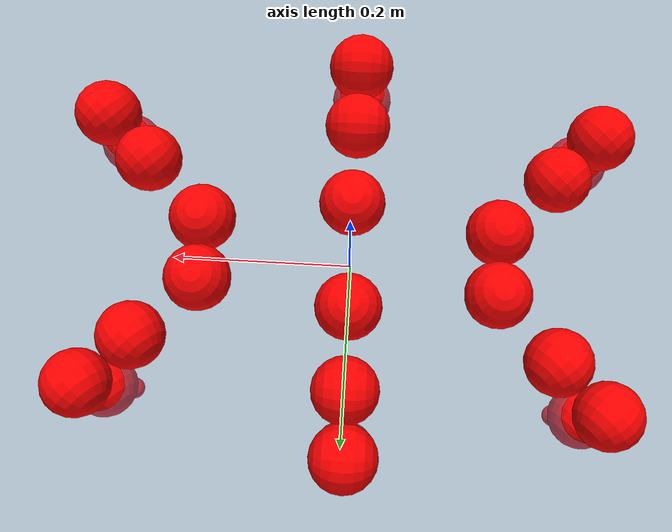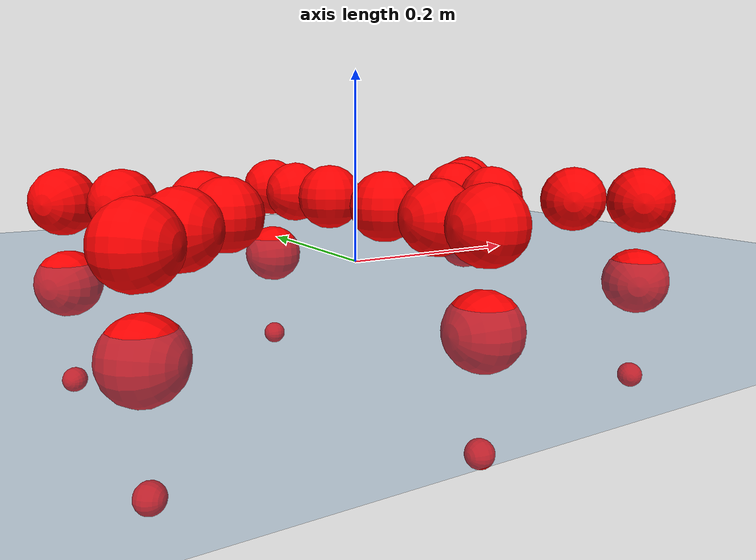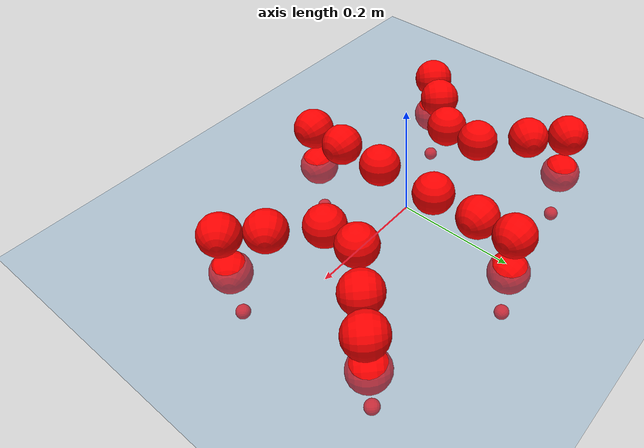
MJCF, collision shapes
<mujoco model="Golem">
  <compiler angle="radian" assetdir="assets" balanceinertia="true" inertiafromgeom="false"/>

  <option timestep="0.005" density="1.2" viscosity="2e-05"/>

  <size nkey="1"/>

  <visual>
    <quality shadowsize="8192"/>
    <map shadowclip="0.5"/>
  </visual>

  <default>
    <default class="/">
      <joint armature="0.01" damping="0.01" frictionloss="0.01"/>
      <geom contype="0" conaffinity="0" group="1" solref="-1000 -80"/>
      <site size="0.01 0.005 0.005" group="5"/>
      <general forcelimited="true" biastype="affine" gainprm="25" biasprm="0 -25 -0.5"/>
      <default class="visual">
        <geom type="mesh" group="2"/>
      </default>
      <default class="collision">
        <geom group="3"/>
      </default>
      <default class="foot">
        <geom size="0.01 0 0" condim="6" group="4" priority="1" solimp="0.015 1 0.01"/>
      </default>
      <default class="reward_collision_sphere">
        <geom group="5" rgba="1 0 0 1"/>
      </default>
    </default>
  </default>

  <asset>
    <texture type="skybox" colorspace="auto" name="//unnamed_texture_0" builtin="gradient" rgb1="0.95 0.95 0.95" rgb2="0.95 0.95 0.95" width="100" height="600"/>
    <texture type="2d" colorspace="auto" name="texplane" builtin="checker" rgb1="0.345 0.575 0.748" rgb2="0.345 0.575 0.748" markrgb="1 1 1" width="512" height="512"/>
    <material name="MatPlane" class="/" texture="texplane" texuniform="true" texrepeat="2 2" specular="0.9"/>
    <mesh name="body" class="/" file="body.stl" scale="0.001 0.001 0.001"/>
    <mesh name="coxa" class="/" file="coxa.stl" scale="0.001 0.001 0.001"/>
    <mesh name="femur" class="/" file="femur.stl" scale="0.001 0.001 0.001"/>
    <mesh name="tibia" class="/" file="tibia.stl" scale="0.001 0.001 0.001"/>
    <mesh name="tarsus" class="/" file="tarsus.stl" scale="0.001 0.001 0.001"/>
  </asset>

  <worldbody>
    <geom name="floor" class="/" size="100 100 0.125" type="plane" group="0" material="MatPlane"/>
    <light name="toplight_shadow" class="/" pos="0 0 5" dir="0.0990148 0.0990148 -0.990148" type="directional" ambient="0.04 0.04 0.04" diffuse="0.55 0.55 0.55" specular="0.12 0.12 0.12"/>
    <light name="toplight_fill" class="/" pos="0 0 5" dir="0.0990148 0.0990148 -0.990148" type="directional" castshadow="false" ambient="0.04 0.04 0.04" diffuse="0.3 0.3 0.3" specular="0.08 0.08 0.08"/>
    <body name="trunk" pos="0.000487169 8.27524e-05 -0.000588956" quat="1 -0.000291595 -6.86973e-05 -0.000337018">
      <inertial pos="0.000310844 -0.000729251 -0.00381569" quat="0.999992 0.00278932 -0.00126674 0.00241929" mass="2.53825" diaginertia="0.00979541 0.00110322 0.0102621"/>
      <joint name="//unnamed_joint_0" type="free"/>
      <geom name="//unnamed_geom_1" class="/" pos="0 0 0.0642949" quat="1 0 0 0" type="mesh" rgba="0.9 0.9 0.9 1" mesh="body"/>
      <site name="imu" class="/" pos="0.133732 0.00015076 0.100662" size="0.00880591"/>
      <camera name="track" class="/" pos="0 -1.28334 0" quat="0.707107 0.707107 0 0" mode="trackcom"/>
      <camera name="ego_camera" class="/" pos="0.129415 0 0.100461" quat="-0.5 -0.5 0.5 0.5"/>
      <body name="coxa_RR" pos="-0.177212 -0.053452 0.0640529" quat="0.382896 0.000593815 0.000221846 -0.923791">
        <inertial pos="-0.00101766 0.000799671 0.000717892" quat="1 -3.23356e-05 0.000383006 -0.000376147" mass="0.135702" diaginertia="0.00977897 0.00109507 0.0101299"/>
        <joint name="coxa_joint_RR" class="/" pos="0 0 0" axis="-0.000958768 5.99033e-05 -1" range="-3.12073 3.14806" armature="0.00890523" damping="0.00866822" frictionloss="0.00886089"/>
        <geom name="//unnamed_geom_2" class="/" type="mesh" rgba="0.2 0.2 0.2 1" mesh="coxa"/>
        <geom name="//unnamed_geom_3" class="reward_collision_sphere" size="0.0352236" pos="-0.0298649 0 0"/>
        <body name="femur_RR" pos="0.0579512 0.000326126 -0.00140817" quat="0.49995 -0.499768 0.49984 0.500441">
          <inertial pos="-5.39113e-05 0.000604397 0.000484754" quat="1 0.000242534 -0.000153285 3.24613e-05" mass="0.136046" diaginertia="0.00976022 0.0010843 0.0100929"/>
          <joint name="femur_joint_RR" class="/" pos="0 0 0" axis="0.000622452 -0.000176754 -1" range="-3.14269 3.13457" armature="0.00920771" damping="0.00297369" frictionloss="0.0089344"/>
          <geom name="//unnamed_geom_4" class="/" type="mesh" rgba="0.9 0.9 0.9 1" mesh="femur"/>
          <geom name="//unnamed_geom_5" class="reward_collision_sphere" size="0.0352236"/>
          <body name="tibia_RR" pos="0.00102503 -0.068729 0.00178891" quat="5.59423e-05 1 -4.77919e-06 2.50762e-05">
            <inertial pos="0.000948173 0.000457597 -0.000575698" quat="1 -0.000493445 0.000797587 -0.000188827" mass="0.138071" diaginertia="0.00989054 0.001097 0.0104092"/>
            <joint name="tibia_joint_RR" class="/" pos="0 0 0" axis="0.00120288 0.000602811 0.999999" range="-3.13977 3.14998" armature="0.00890835" damping="0" frictionloss="0.00900157"/>
            <geom name="//unnamed_geom_6" class="/" type="mesh" rgba="0.2 0.2 0.2 1" mesh="tibia"/>
            <geom name="//unnamed_geom_7" class="reward_collision_sphere" size="0.0352236"/>
            <body name="tarsus_RR" pos="0.0849579 -0.000877181 -0.000520232" quat="1 0.000236922 5.21819e-05 -3.96192e-05">
              <inertial pos="0.0587784 -0.000437057 -0.000705158" quat="0.501339 0.498764 0.49944 0.500453" mass="0.134087" diaginertia="0.00978051 0.00107343 0.0100826"/>
              <joint name="tarsus_joint_RR" class="/" pos="0 0 0" axis="0.00296559 -0.00102862 0.999995" range="-3.13868 3.13434" armature="0.00888906" damping="0.00225906" frictionloss="0.00858225"/>
              <geom name="//unnamed_geom_8" class="/" type="mesh" rgba="0.9 0.9 0.9 1" mesh="tarsus"/>
              <geom name="foot_1" class="foot" size="0.00853207" pos="0.111496 0 0" quat="0 -0.707107 0 0.707107"/>
              <geom name="//unnamed_geom_10" class="reward_collision_sphere" size="0.0352236"/>
              <geom name="//unnamed_geom_11" class="reward_collision_sphere" size="0.0132089" pos="0.107016 0 0"/>
              <site name="foot_1" class="foot" pos="0.111496 0 0" quat="0 -0.707107 0 0.707107" size="0.00880591"/>
            </body>
          </body>
        </body>
      </body>
      <body name="coxa_RM" pos="8.72452e-05 -0.0864679 0.0651633" quat="0.707156 -3.00452e-05 0.000387774 -0.707058">
        <inertial pos="7.69617e-05 0.000903639 -0.000894439" quat="1 0.000190988 0.000449474 -0.00072913" mass="0.137023" diaginertia="0.00988246 0.00109103 0.0102044"/>
        <joint name="coxa_joint_RM" class="/" pos="0 0 0" axis="-0.000692864 -0.000233698 -1" range="-3.13702 3.12836" armature="0.00907282" damping="0.0109727" frictionloss="0.00844413"/>
        <geom name="//unnamed_geom_12" class="/" type="mesh" rgba="0.2 0.2 0.2 1" mesh="coxa"/>
        <geom name="//unnamed_geom_13" class="reward_collision_sphere" size="0.0352236" pos="-0.0298649 0 0"/>
        <body name="femur_RM" pos="0.0575884 -0.00126902 -0.00138032" quat="0.499987 -0.499858 0.50052 0.499635">
          <inertial pos="-0.000297461 0.00057751 -0.00025324" quat="0.999993 -0.000788434 -9.12798e-05 -0.00368902" mass="0.13617" diaginertia="0.00980018 0.00109839 0.0102566"/>
          <joint name="femur_joint_RM" class="/" pos="0 0 0" axis="-0.00148499 -0.0019754 -0.999997" range="-3.13886 3.13882" armature="0.00923681" damping="0.011136" frictionloss="0.00893825"/>
          <geom name="//unnamed_geom_14" class="/" type="mesh" rgba="0.9 0.9 0.9 1" mesh="femur"/>
          <geom name="//unnamed_geom_15" class="reward_collision_sphere" size="0.0352236"/>
          <body name="tibia_RM" pos="-0.000951982 -0.0686907 -0.000589059" quat="2.43902e-05 1 9.85241e-05 -2.30011e-05">
            <inertial pos="0.000539042 -0.000330957 -0.000292943" quat="1 8.14039e-05 0.000563942 0.00041987" mass="0.135884" diaginertia="0.00970246 0.00108751 0.0102859"/>
            <joint name="tibia_joint_RM" class="/" pos="0 0 0" axis="0.000182862 -0.00053656 1" range="-3.13678 3.13875" armature="0.00885625" damping="0.00430394" frictionloss="0.00900825"/>
            <geom name="//unnamed_geom_16" class="/" type="mesh" rgba="0.2 0.2 0.2 1" mesh="tibia"/>
            <geom name="//unnamed_geom_17" class="reward_collision_sphere" size="0.0352236"/>
            <body name="tarsus_RM" pos="0.0878116 -0.000143544 0.00162938" quat="1 0.00034651 -6.30169e-05 -0.000167504">
              <inertial pos="0.0605681 0.000339986 0.00109737" quat="0.501426 0.50004 0.500395 0.498134" mass="0.13673" diaginertia="0.00973831 0.00108839 0.0101995"/>
              <joint name="tarsus_joint_RM" class="/" pos="0 0 0" axis="-0.00152912 0.00114675 0.999998" range="-3.1387 3.16618" armature="0.00880163" damping="0" frictionloss="0.00860482"/>
              <geom name="//unnamed_geom_18" class="/" type="mesh" rgba="0.9 0.9 0.9 1" mesh="tarsus"/>
              <geom name="foot_2" class="foot" size="0.00873874" pos="0.111496 0 0" quat="0 -0.707107 0 0.707107"/>
              <geom name="//unnamed_geom_20" class="reward_collision_sphere" size="0.0352236"/>
              <geom name="//unnamed_geom_21" class="reward_collision_sphere" size="0.0132089" pos="0.107016 0 0"/>
              <site name="foot_2" class="foot" pos="0.111496 0 0" quat="0 -0.707107 0 0.707107" size="0.00880591"/>
            </body>
          </body>
        </body>
      </body>
      <body name="coxa_RF" pos="0.178473 -0.0536016 0.0638802" quat="0.923767 3.23725e-05 -0.000194105 -0.382956">
        <inertial pos="0.000656302 -0.00028097 -0.000275891" quat="0.999999 6.8924e-05 -0.00057635 0.00122839" mass="0.135887" diaginertia="0.0098061 0.00108763 0.010224"/>
        <joint name="coxa_joint_RF" class="/" pos="0 0 0" axis="0.00238206 -0.0015585 -0.999996" range="-3.13634 3.12778" armature="0.00871463" damping="0" frictionloss="0.00911334"/>
        <geom name="//unnamed_geom_22" class="/" type="mesh" rgba="0.2 0.2 0.2 1" mesh="coxa"/>
        <geom name="//unnamed_geom_23" class="reward_collision_sphere" size="0.0352236" pos="-0.0298649 0 0"/>
        <body name="femur_RF" pos="0.0590782 0.00149907 0.000405233" quat="0.500505 -0.49971 0.499558 0.500226">
          <inertial pos="0.000702863 -0.000498193 0.000981807" quat="0.99999 -0.00281907 0.00305116 0.00184139" mass="0.138195" diaginertia="0.0098828 0.00110573 0.0103573"/>
          <joint name="femur_joint_RF" class="/" pos="0 0 0" axis="-0.000334733 -0.000628674 -1" range="-3.15787 3.11994" armature="0.00859546" damping="0.00766898" frictionloss="0.00894477"/>
          <geom name="//unnamed_geom_24" class="/" type="mesh" rgba="0.9 0.9 0.9 1" mesh="femur"/>
          <geom name="//unnamed_geom_25" class="reward_collision_sphere" size="0.0352236"/>
          <body name="tibia_RF" pos="-0.000209116 -0.0694257 0.000459006" quat="-8.14759e-05 1 7.44844e-05 -6.6666e-05">
            <inertial pos="2.85937e-05 0.000387276 0.000127004" quat="0.999992 -0.000461901 -0.00224171 -0.00316103" mass="0.133042" diaginertia="0.00961599 0.00107513 0.0101404"/>
            <joint name="tibia_joint_RF" class="/" pos="0 0 0" axis="0.000482418 8.89705e-05 1" range="-3.14034 3.13859" armature="0.00872618" damping="0" frictionloss="0.00881411"/>
            <geom name="//unnamed_geom_26" class="/" type="mesh" rgba="0.2 0.2 0.2 1" mesh="tibia"/>
            <geom name="//unnamed_geom_27" class="reward_collision_sphere" size="0.0352236"/>
            <body name="tarsus_RF" pos="0.0879745 -0.000712516 -0.000287463" quat="1 -0.000141429 0.00027414 -0.000198221">
              <inertial pos="0.0598858 -0.000106711 0.000176264" quat="0.500214 0.500109 0.500053 0.499623" mass="0.135513" diaginertia="0.0096625 0.00109084 0.0101708"/>
              <joint name="tarsus_joint_RF" class="/" pos="0 0 0" axis="-0.000603682 -0.00347848 0.999994" range="-3.13413 3.1315" armature="0.00899072" damping="0" frictionloss="0.00859365"/>
              <geom name="//unnamed_geom_28" class="/" type="mesh" rgba="0.9 0.9 0.9 1" mesh="tarsus"/>
              <geom name="foot_3" class="foot" size="0.00900048" pos="0.111496 0 0" quat="0 -0.707107 0 0.707107"/>
              <geom name="//unnamed_geom_30" class="reward_collision_sphere" size="0.0352236"/>
              <geom name="//unnamed_geom_31" class="reward_collision_sphere" size="0.0132089" pos="0.107016 0 0"/>
              <site name="foot_3" class="foot" pos="0.111496 0 0" quat="0 -0.707107 0 0.707107" size="0.00880591"/>
            </body>
          </body>
        </body>
      </body>
      <body name="coxa_LR" pos="-0.176578 0.0552333 0.0656319" quat="0.382912 5.95573e-05 -5.9084e-05 0.923785">
        <inertial pos="0.000299465 0.000352637 0.000877369" quat="0.999996 -0.000708336 0.00275887 0.000875103" mass="0.136042" diaginertia="0.00964451 0.00107066 0.0100431"/>
        <joint name="coxa_joint_LR" class="/" pos="0 0 0" axis="-0.0018488 0.00447968 -0.999988" range="-3.14275 3.12868" armature="0.00858264" damping="0.00850149" frictionloss="0.00865"/>
        <geom name="//unnamed_geom_32" class="/" type="mesh" rgba="0.2 0.2 0.2 1" mesh="coxa"/>
        <geom name="//unnamed_geom_33" class="reward_collision_sphere" size="0.0352236" pos="-0.0298649 0 0"/>
        <body name="femur_LR" pos="0.0601944 -0.00257356 0.000385541" quat="0.500028 -0.499853 0.499922 0.500197">
          <inertial pos="-0.000134442 0.000618943 -0.00114172" quat="0.999989 0.000439604 -0.00419655 0.00196466" mass="0.134292" diaginertia="0.00972925 0.00108222 0.0101939"/>
          <joint name="femur_joint_LR" class="/" pos="0 0 0" axis="-0.00246742 -0.00425801 0.999988" range="-3.13662 3.13773" armature="0.00843648" damping="0.00375021" frictionloss="0.0086032"/>
          <geom name="//unnamed_geom_34" class="/" type="mesh" rgba="0.9 0.9 0.9 1" mesh="femur"/>
          <geom name="//unnamed_geom_35" class="reward_collision_sphere" size="0.0352236"/>
          <body name="tibia_LR" pos="0.00070247 -0.070666 -0.000759888" quat="8.03316e-06 1 -1.67056e-05 -2.27951e-05">
            <inertial pos="-0.000591308 0.000428661 0.000312044" quat="0.999999 -0.000585013 -0.000979898 0.00077608" mass="0.135208" diaginertia="0.00960577 0.00107434 0.0101227"/>
            <joint name="tibia_joint_LR" class="/" pos="0 0 0" axis="0.0037499 0.00367417 -0.999986" range="-3.14256 3.11112" armature="0.00937633" damping="0" frictionloss="0.00850033"/>
            <geom name="//unnamed_geom_36" class="/" type="mesh" rgba="0.2 0.2 0.2 1" mesh="tibia"/>
            <geom name="//unnamed_geom_37" class="reward_collision_sphere" size="0.0352236"/>
            <body name="tarsus_LR" pos="0.0873285 0.000702647 0.00186492" quat="1 3.34689e-06 -1.01337e-05 -5.06049e-06">
              <inertial pos="0.0611197 -0.000176009 -0.00133546" quat="0.499981 0.49997 0.499993 0.500056" mass="0.137039" diaginertia="0.00972942 0.00108577 0.0103349"/>
              <joint name="tarsus_joint_LR" class="/" pos="0 0 0" axis="0.000935456 -0.000389805 -0.999999" stiffness="0.000217165" range="-3.1562 3.1574" armature="0.00902955" damping="0" frictionloss="0.0087659"/>
              <geom name="//unnamed_geom_38" class="/" type="mesh" rgba="0.9 0.9 0.9 1" mesh="tarsus"/>
              <geom name="foot_4" class="foot" size="0.00872784" pos="0.111496 0 0" quat="0.707107 0 -0.707107 0"/>
              <geom name="//unnamed_geom_40" class="reward_collision_sphere" size="0.0352236"/>
              <geom name="//unnamed_geom_41" class="reward_collision_sphere" size="0.0132089" pos="0.107016 0 0"/>
              <site name="foot_4" class="foot" pos="0.111496 0 0" quat="0.707107 0 -0.707107 0" size="0.00880591"/>
            </body>
          </body>
        </body>
      </body>
      <body name="coxa_LM" pos="-0.00178874 0.0841181 0.0655889" quat="0.707161 -0.000100022 -0.000228309 0.707052">
        <inertial pos="0.000142391 -0.000475734 0.00174085" quat="0.99999 0.0019182 0.00149921 -0.00383409" mass="0.13455" diaginertia="0.00980267 0.00108357 0.010155"/>
        <joint name="coxa_joint_LM" class="/" pos="0 0 0" axis="0.000384069 -0.000466041 -1" range="-3.13493 3.14803" armature="0.00836558" damping="0.0086197" frictionloss="0.00881474"/>
        <geom name="//unnamed_geom_42" class="/" type="mesh" rgba="0.2 0.2 0.2 1" mesh="coxa"/>
        <geom name="//unnamed_geom_43" class="reward_collision_sphere" size="0.0352236" pos="-0.0298649 0 0"/>
        <body name="femur_LM" pos="0.0550843 0.00132558 -0.000890796" quat="0.499846 -0.500173 0.500122 0.499859">
          <inertial pos="-0.00110155 -0.00104698 0.000775193" quat="1 -0.000951036 0.000106244 -6.3528e-05" mass="0.134136" diaginertia="0.00973302 0.00106685 0.0101719"/>
          <joint name="femur_joint_LM" class="/" pos="0 0 0" axis="0.0039206 0.0025993 0.999989" range="-3.1376 3.14062" armature="0.00860318" damping="0.00516475" frictionloss="0.0086831"/>
          <geom name="//unnamed_geom_44" class="/" type="mesh" rgba="0.9 0.9 0.9 1" mesh="femur"/>
          <geom name="//unnamed_geom_45" class="reward_collision_sphere" size="0.0352236"/>
          <body name="tibia_LM" pos="-0.00113386 -0.066094 0.0017891" quat="9.72187e-06 1 -5.24343e-05 3.91078e-05">
            <inertial pos="0.000202352 -0.00136677 -0.000489005" quat="0.999999 -0.00108906 0.000390357 -0.0007204" mass="0.134227" diaginertia="0.0097548 0.00108394 0.0101681"/>
            <joint name="tibia_joint_LM" class="/" pos="0 0 0" axis="-0.0011844 0.00159127 -0.999998" range="-3.13205 3.14478" armature="0.00893461" damping="0.00662349" frictionloss="0.00843675"/>
            <geom name="//unnamed_geom_46" class="/" type="mesh" rgba="0.2 0.2 0.2 1" mesh="tibia"/>
            <geom name="//unnamed_geom_47" class="reward_collision_sphere" size="0.0352236"/>
            <body name="tarsus_LM" pos="0.0867881 -2.97696e-05 0.000104138" quat="1 2.99303e-05 5.12909e-05 4.76895e-05">
              <inertial pos="0.0606386 -0.000830872 0.000223749" quat="0.500038 0.500082 0.499969 0.499912" mass="0.136155" diaginertia="0.00982494 0.00109286 0.0101837"/>
              <joint name="tarsus_joint_LM" class="/" pos="0 0 0" axis="0.0035627 -0.00375652 -0.999987" range="-3.1348 3.14423" armature="0.00876379" damping="0.0014384" frictionloss="0.00880629"/>
              <geom name="//unnamed_geom_48" class="/" type="mesh" rgba="0.9 0.9 0.9 1" mesh="tarsus"/>
              <geom name="foot_5" class="foot" size="0.00881615" pos="0.111496 0 0" quat="0.707107 0 -0.707107 0"/>
              <geom name="//unnamed_geom_50" class="reward_collision_sphere" size="0.0352236"/>
              <geom name="//unnamed_geom_51" class="reward_collision_sphere" size="0.0132089" pos="0.107016 0 0"/>
              <site name="foot_5" class="foot" pos="0.111496 0 0" quat="0.707107 0 -0.707107 0" size="0.00880591"/>
            </body>
          </body>
        </body>
      </body>
      <body name="coxa_LF" pos="0.177461 0.0535445 0.0651492" quat="0.923905 3.02596e-05 -6.38689e-05 0.382621">
        <inertial pos="-0.000169158 0.000274038 -0.000393597" quat="0.999995 0.000738935 -0.000220921 -0.00307732" mass="0.135935" diaginertia="0.00993305 0.00108937 0.0102327"/>
        <joint name="coxa_joint_LF" class="/" pos="0 0 0" axis="0.00178444 0.00365264 -0.999992" range="-3.12908 3.13268" armature="0.00917907" damping="0.00227906" frictionloss="0.0088105"/>
        <geom name="//unnamed_geom_52" class="/" type="mesh" rgba="0.2 0.2 0.2 1" mesh="coxa"/>
        <geom name="//unnamed_geom_53" class="reward_collision_sphere" size="0.0352236" pos="-0.0298649 0 0"/>
        <body name="femur_LF" pos="0.0585103 0.000723387 0.00037149" quat="0.500024 -0.49999 0.50001 0.499976">
          <inertial pos="-8.08025e-06 -0.000763283 0.000176035" quat="0.999993 -0.00181646 0.00290033 -0.0013389" mass="0.137115" diaginertia="0.00979225 0.00108774 0.0102491"/>
          <joint name="femur_joint_LF" class="/" pos="0 0 0" axis="-0.00185815 -0.00425561 0.999989" stiffness="0.000457517" range="-3.14703 3.13579" armature="0.00883517" damping="0.000580906" frictionloss="0.00880839"/>
          <geom name="//unnamed_geom_54" class="/" type="mesh" rgba="0.9 0.9 0.9 1" mesh="femur"/>
          <geom name="//unnamed_geom_55" class="reward_collision_sphere" size="0.0352236"/>
          <body name="tibia_LF" pos="-0.000268692 -0.0706975 0.00133585" quat="-0.000202047 1 0.00012349 0.000174071">
            <inertial pos="3.90644e-05 4.1959e-05 -0.000373063" quat="0.999977 0.00631239 -0.00198943 -0.00163878" mass="0.138044" diaginertia="0.00986577 0.00109276 0.0102858"/>
            <joint name="tibia_joint_LF" class="/" pos="0 0 0" axis="-0.00502399 -0.00270977 -0.999984" range="-3.13894 3.12244" armature="0.00871827" damping="0.000127432" frictionloss="0.00858438"/>
            <geom name="//unnamed_geom_56" class="/" type="mesh" rgba="0.2 0.2 0.2 1" mesh="tibia"/>
            <geom name="//unnamed_geom_57" class="reward_collision_sphere" size="0.0352236"/>
            <body name="tarsus_LF" pos="0.0870231 -0.000215781 -0.000942008" quat="1 0.000135164 8.54928e-06 8.93466e-05">
              <inertial pos="0.0606921 0.00117188 0.000146615" quat="0.499424 0.500735 0.50006 0.499779" mass="0.134769" diaginertia="0.00967818 0.00107518 0.0101428"/>
              <joint name="tarsus_joint_LF" class="/" pos="0 0 0" axis="-0.0037656 0.00100761 -0.999992" range="-3.14029 3.11954" armature="0.0091231" damping="0.00791104" frictionloss="0.00867267"/>
              <geom name="//unnamed_geom_58" class="/" type="mesh" rgba="0.9 0.9 0.9 1" mesh="tarsus"/>
              <geom name="foot_6" class="foot" size="0.00856468" pos="0.111496 0 0" quat="0.707107 0 -0.707107 0"/>
              <geom name="//unnamed_geom_60" class="reward_collision_sphere" size="0.0352236"/>
              <geom name="//unnamed_geom_61" class="reward_collision_sphere" size="0.0132089" pos="0.107016 0 0"/>
              <site name="foot_6" class="foot" pos="0.111496 0 0" quat="0.707107 0 -0.707107 0" size="0.00880591"/>
            </body>
          </body>
        </body>
      </body>
    </body>
  </worldbody>

  <contact>
    <pair class="/" geom1="floor" geom2="foot_1" name="//unnamed_contact_0"/>
    <pair class="/" geom1="floor" geom2="foot_2" name="//unnamed_contact_1"/>
    <pair class="/" geom1="floor" geom2="foot_3" name="//unnamed_contact_2"/>
    <pair class="/" geom1="floor" geom2="foot_4" name="//unnamed_contact_3"/>
    <pair class="/" geom1="floor" geom2="foot_5" name="//unnamed_contact_4"/>
    <pair class="/" geom1="floor" geom2="foot_6" name="//unnamed_contact_5"/>
  </contact>

  <actuator>
    <general name="coxa_joint_RR" class="/" joint="coxa_joint_RR" forcerange="-6.45201 6.45201" gainprm="21.2391" biasprm="0 -21.2391 -0.452988"/>
    <general name="femur_joint_RR" class="/" joint="femur_joint_RR" forcerange="-6.23147 6.23147" gainprm="21.2391" biasprm="0 -21.2391 -0.452988"/>
    <general name="tibia_joint_RR" class="/" joint="tibia_joint_RR" forcerange="-6.39427 6.39427" gainprm="21.2391" biasprm="0 -21.2391 -0.452988"/>
    <general name="tarsus_joint_RR" class="/" joint="tarsus_joint_RR" forcerange="-6.26305 6.26305" gainprm="21.2391" biasprm="0 -21.2391 -0.452988"/>
    <general name="coxa_joint_RM" class="/" joint="coxa_joint_RM" forcerange="-6.76596 6.76596" gainprm="21.2391" biasprm="0 -21.2391 -0.452988"/>
    <general name="femur_joint_RM" class="/" joint="femur_joint_RM" forcerange="-6.48437 6.48437" gainprm="21.2391" biasprm="0 -21.2391 -0.452988"/>
    <general name="tibia_joint_RM" class="/" joint="tibia_joint_RM" forcerange="-6.24774 6.24774" gainprm="21.2391" biasprm="0 -21.2391 -0.452988"/>
    <general name="tarsus_joint_RM" class="/" joint="tarsus_joint_RM" forcerange="-6.38829 6.38829" gainprm="21.2391" biasprm="0 -21.2391 -0.452988"/>
    <general name="coxa_joint_RF" class="/" joint="coxa_joint_RF" forcerange="-6.39831 6.39831" gainprm="21.2391" biasprm="0 -21.2391 -0.452988"/>
    <general name="femur_joint_RF" class="/" joint="femur_joint_RF" forcerange="-6.43471 6.43471" gainprm="21.2391" biasprm="0 -21.2391 -0.452988"/>
    <general name="tibia_joint_RF" class="/" joint="tibia_joint_RF" forcerange="-6.46543 6.46543" gainprm="21.2391" biasprm="0 -21.2391 -0.452988"/>
    <general name="tarsus_joint_RF" class="/" joint="tarsus_joint_RF" forcerange="-6.42603 6.42603" gainprm="21.2391" biasprm="0 -21.2391 -0.452988"/>
    <general name="coxa_joint_LR" class="/" joint="coxa_joint_LR" forcerange="-6.56864 6.56864" gainprm="21.2391" biasprm="0 -21.2391 -0.452988"/>
    <general name="femur_joint_LR" class="/" joint="femur_joint_LR" forcerange="-6.44464 6.44464" gainprm="21.2391" biasprm="0 -21.2391 -0.452988"/>
    <general name="tibia_joint_LR" class="/" joint="tibia_joint_LR" forcerange="-6.31252 6.31252" gainprm="21.2391" biasprm="0 -21.2391 -0.452988"/>
    <general name="tarsus_joint_LR" class="/" joint="tarsus_joint_LR" forcerange="-6.62926 6.62926" gainprm="21.2391" biasprm="0 -21.2391 -0.452988"/>
    <general name="coxa_joint_LM" class="/" joint="coxa_joint_LM" forcerange="-6.41679 6.41679" gainprm="21.2391" biasprm="0 -21.2391 -0.452988"/>
    <general name="femur_joint_LM" class="/" joint="femur_joint_LM" forcerange="-6.36377 6.36377" gainprm="21.2391" biasprm="0 -21.2391 -0.452988"/>
    <general name="tibia_joint_LM" class="/" joint="tibia_joint_LM" forcerange="-6.52841 6.52841" gainprm="21.2391" biasprm="0 -21.2391 -0.452988"/>
    <general name="tarsus_joint_LM" class="/" joint="tarsus_joint_LM" forcerange="-6.73843 6.73843" gainprm="21.2391" biasprm="0 -21.2391 -0.452988"/>
    <general name="coxa_joint_LF" class="/" joint="coxa_joint_LF" forcerange="-6.5624 6.5624" gainprm="21.2391" biasprm="0 -21.2391 -0.452988"/>
    <general name="femur_joint_LF" class="/" joint="femur_joint_LF" forcerange="-6.58252 6.58252" gainprm="21.2391" biasprm="0 -21.2391 -0.452988"/>
    <general name="tibia_joint_LF" class="/" joint="tibia_joint_LF" forcerange="-6.51359 6.51359" gainprm="21.2391" biasprm="0 -21.2391 -0.452988"/>
    <general name="tarsus_joint_LF" class="/" joint="tarsus_joint_LF" forcerange="-6.6445 6.6445" gainprm="21.2391" biasprm="0 -21.2391 -0.452988"/>
  </actuator>

  <sensor>
    <gyro site="imu" name="imu_angular_velocity"/>
    <velocimeter site="imu" name="imu_linear_velocity"/>
    <framelinvel objtype="site" objname="foot_1" name="foot_1_global_linear_velocity"/>
    <framelinvel objtype="site" objname="foot_2" name="foot_2_global_linear_velocity"/>
    <framelinvel objtype="site" objname="foot_3" name="foot_3_global_linear_velocity"/>
    <framelinvel objtype="site" objname="foot_4" name="foot_4_global_linear_velocity"/>
    <framelinvel objtype="site" objname="foot_5" name="foot_5_global_linear_velocity"/>
    <framelinvel objtype="site" objname="foot_6" name="foot_6_global_linear_velocity"/>
  </sensor>

  <keyframe>
    <key name="home" qpos="0 0 0.1457 1 0 0 0 0 0 0 0 0 0 0 0 0 0 0 0 0 0 0 0 0 0 0 0 0 0 0 0"/>
  </keyframe>
</mujoco>
